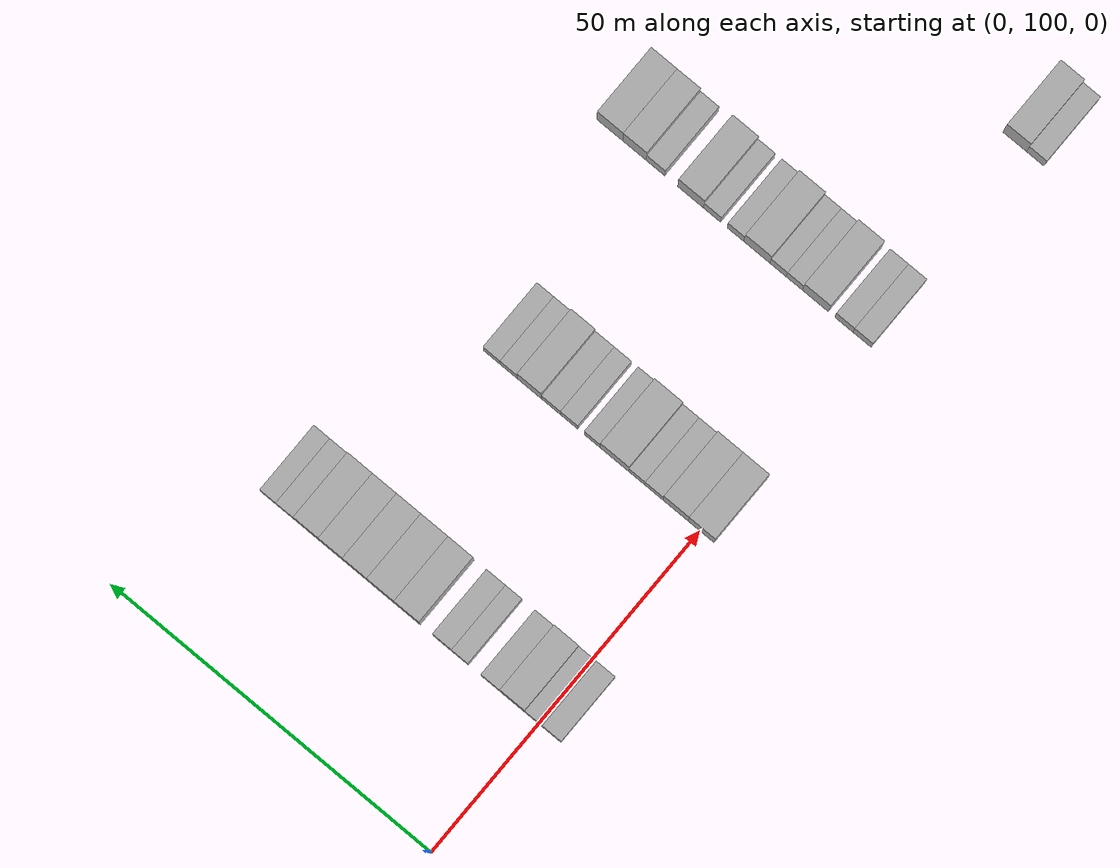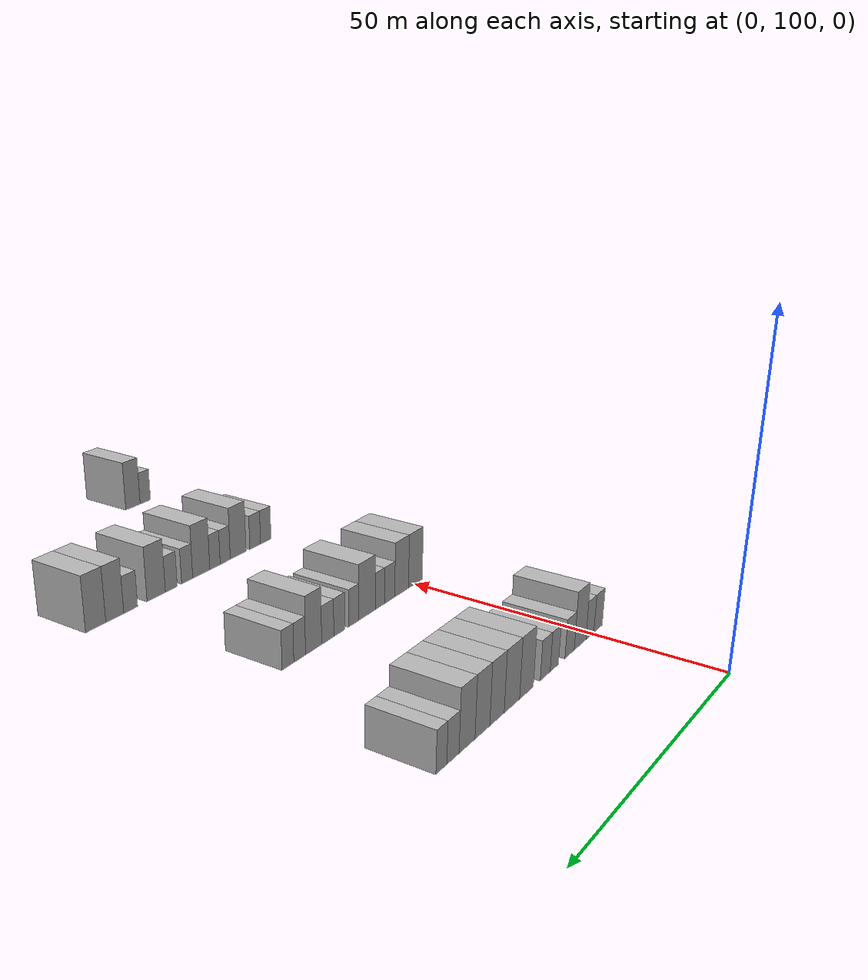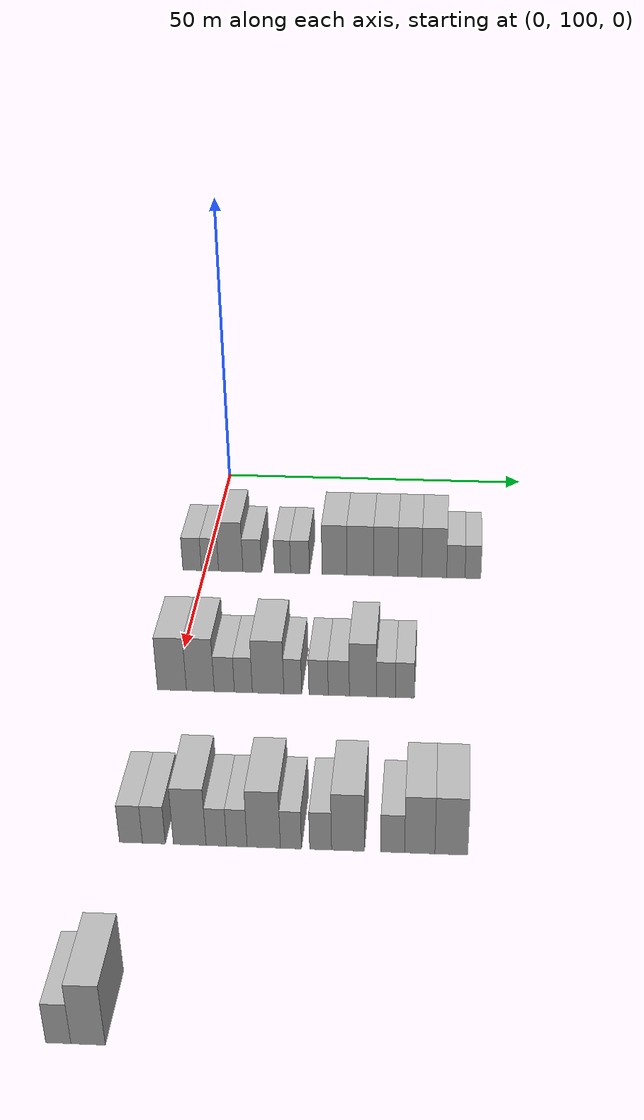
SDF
<sdf version="1.6">
 <world name="default">
  <model name="building_140">
   <static>1</static>
   <pose>25.0000 98.0081 0 0.000000 0.000000 0.000000</pose>
   <link name="link">
    <pose>0 0 3.00 0 0 0</pose>
    <collision name="collision"><geometry><box><size>10.0000 2.9160 6.0000</size></box></geometry></collision>
    <visual name="visual">
     <cast_shadows>0</cast_shadows>
     <geometry><box><size>10.0000 2.9160 6.0000</size></box></geometry>
     <material>
      <script>
       <uri>model://HANNAS_wall/materials/scripts</uri>
       <uri>model://HANNAS_wall/materials/textures</uri>
       <name>vrc/HANNAS_wall</name>
      </script>
     </material>
    </visual>
   </link>
  </model>
  <model name="building_141">
   <static>1</static>
   <pose>25.0000 100.8148 0 0.000000 0.000000 0.000000</pose>
   <link name="link">
    <pose>0 0 3.00 0 0 0</pose>
    <collision name="collision"><geometry><box><size>10.0000 2.6975 6.0000</size></box></geometry></collision>
    <visual name="visual">
     <cast_shadows>0</cast_shadows>
     <geometry><box><size>10.0000 2.6975 6.0000</size></box></geometry>
     <material>
      <script>
       <uri>model://HANNAS_wall/materials/scripts</uri>
       <uri>model://HANNAS_wall/materials/textures</uri>
       <name>vrc/HANNAS_wall</name>
      </script>
     </material>
    </visual>
   </link>
  </model>
  <model name="building_142">
   <static>1</static>
   <pose>25.0000 104.0784 0 0.000000 0.000000 0.000000</pose>
   <link name="link">
    <pose>0 0 4.50 0 0 0</pose>
    <collision name="collision"><geometry><box><size>10.0000 3.8297 9.0000</size></box></geometry></collision>
    <visual name="visual">
     <cast_shadows>0</cast_shadows>
     <geometry><box><size>10.0000 3.8297 9.0000</size></box></geometry>
     <material>
      <script>
       <uri>model://HANNAS_wall/materials/scripts</uri>
       <uri>model://HANNAS_wall/materials/textures</uri>
       <name>vrc/HANNAS_wall</name>
      </script>
     </material>
    </visual>
   </link>
  </model>
  <model name="building_143">
   <static>1</static>
   <pose>25.0000 107.4707 0 0.000000 0.000000 0.000000</pose>
   <link name="link">
    <pose>0 0 3.00 0 0 0</pose>
    <collision name="collision"><geometry><box><size>10.0000 2.9550 6.0000</size></box></geometry></collision>
    <visual name="visual">
     <cast_shadows>0</cast_shadows>
     <geometry><box><size>10.0000 2.9550 6.0000</size></box></geometry>
     <material>
      <script>
       <uri>model://HANNAS_wall/materials/scripts</uri>
       <uri>model://HANNAS_wall/materials/textures</uri>
       <name>vrc/HANNAS_wall</name>
      </script>
     </material>
    </visual>
   </link>
  </model>
  <model name="building_144">
   <static>1</static>
   <pose>25.0000 112.2206 0 0.000000 0.000000 0.000000</pose>
   <link name="link">
    <pose>0 0 3.00 0 0 0</pose>
    <collision name="collision"><geometry><box><size>10.0000 2.5448 6.0000</size></box></geometry></collision>
    <visual name="visual">
     <cast_shadows>0</cast_shadows>
     <geometry><box><size>10.0000 2.5448 6.0000</size></box></geometry>
     <material>
      <script>
       <uri>model://HANNAS_wall/materials/scripts</uri>
       <uri>model://HANNAS_wall/materials/textures</uri>
       <name>vrc/HANNAS_wall</name>
      </script>
     </material>
    </visual>
   </link>
  </model>
  <model name="building_145">
   <static>1</static>
   <pose>25.0000 114.9694 0 0.000000 0.000000 0.000000</pose>
   <link name="link">
    <pose>0 0 3.00 0 0 0</pose>
    <collision name="collision"><geometry><box><size>10.0000 2.9528 6.0000</size></box></geometry></collision>
    <visual name="visual">
     <cast_shadows>0</cast_shadows>
     <geometry><box><size>10.0000 2.9528 6.0000</size></box></geometry>
     <material>
      <script>
       <uri>model://HANNAS_wall/materials/scripts</uri>
       <uri>model://HANNAS_wall/materials/textures</uri>
       <name>vrc/HANNAS_wall</name>
      </script>
     </material>
    </visual>
   </link>
  </model>
  <model name="building_146">
   <static>1</static>
   <pose>25.0000 120.3851 0 0.000000 0.000000 0.000000</pose>
   <link name="link">
    <pose>0 0 4.50 0 0 0</pose>
    <collision name="collision"><geometry><box><size>10.0000 3.8787 9.0000</size></box></geometry></collision>
    <visual name="visual">
     <cast_shadows>0</cast_shadows>
     <geometry><box><size>10.0000 3.8787 9.0000</size></box></geometry>
     <material>
      <script>
       <uri>model://HANNAS_wall/materials/scripts</uri>
       <uri>model://HANNAS_wall/materials/textures</uri>
       <name>vrc/HANNAS_wall</name>
      </script>
     </material>
    </visual>
   </link>
  </model>
  <model name="building_147">
   <static>1</static>
   <pose>25.0000 124.4127 0 0.000000 0.000000 0.000000</pose>
   <link name="link">
    <pose>0 0 4.50 0 0 0</pose>
    <collision name="collision"><geometry><box><size>10.0000 4.1764 9.0000</size></box></geometry></collision>
    <visual name="visual">
     <cast_shadows>0</cast_shadows>
     <geometry><box><size>10.0000 4.1764 9.0000</size></box></geometry>
     <material>
      <script>
       <uri>model://HANNAS_wall/materials/scripts</uri>
       <uri>model://HANNAS_wall/materials/textures</uri>
       <name>vrc/HANNAS_wall</name>
      </script>
     </material>
    </visual>
   </link>
  </model>
  <model name="building_148">
   <static>1</static>
   <pose>25.0000 128.3811 0 0.000000 0.000000 0.000000</pose>
   <link name="link">
    <pose>0 0 4.50 0 0 0</pose>
    <collision name="collision"><geometry><box><size>10.0000 3.7604 9.0000</size></box></geometry></collision>
    <visual name="visual">
     <cast_shadows>0</cast_shadows>
     <geometry><box><size>10.0000 3.7604 9.0000</size></box></geometry>
     <material>
      <script>
       <uri>model://HANNAS_wall/materials/scripts</uri>
       <uri>model://HANNAS_wall/materials/textures</uri>
       <name>vrc/HANNAS_wall</name>
      </script>
     </material>
    </visual>
   </link>
  </model>
  <model name="building_149">
   <static>1</static>
   <pose>25.0000 132.1184 0 0.000000 0.000000 0.000000</pose>
   <link name="link">
    <pose>0 0 4.50 0 0 0</pose>
    <collision name="collision"><geometry><box><size>10.0000 3.7141 9.0000</size></box></geometry></collision>
    <visual name="visual">
     <cast_shadows>0</cast_shadows>
     <geometry><box><size>10.0000 3.7141 9.0000</size></box></geometry>
     <material>
      <script>
       <uri>model://HANNAS_wall/materials/scripts</uri>
       <uri>model://HANNAS_wall/materials/textures</uri>
       <name>vrc/HANNAS_wall</name>
      </script>
     </material>
    </visual>
   </link>
  </model>
  <model name="building_150">
   <static>1</static>
   <pose>25.0000 135.9030 0 0.000000 0.000000 0.000000</pose>
   <link name="link">
    <pose>0 0 4.50 0 0 0</pose>
    <collision name="collision"><geometry><box><size>10.0000 3.8553 9.0000</size></box></geometry></collision>
    <visual name="visual">
     <cast_shadows>0</cast_shadows>
     <geometry><box><size>10.0000 3.8553 9.0000</size></box></geometry>
     <material>
      <script>
       <uri>model://HANNAS_wall/materials/scripts</uri>
       <uri>model://HANNAS_wall/materials/textures</uri>
       <name>vrc/HANNAS_wall</name>
      </script>
     </material>
    </visual>
   </link>
  </model>
  <model name="building_151">
   <static>1</static>
   <pose>25.0000 139.2548 0 0.000000 0.000000 0.000000</pose>
   <link name="link">
    <pose>0 0 3.00 0 0 0</pose>
    <collision name="collision"><geometry><box><size>10.0000 2.8482 6.0000</size></box></geometry></collision>
    <visual name="visual">
     <cast_shadows>0</cast_shadows>
     <geometry><box><size>10.0000 2.8482 6.0000</size></box></geometry>
     <material>
      <script>
       <uri>model://HANNAS_wall/materials/scripts</uri>
       <uri>model://HANNAS_wall/materials/textures</uri>
       <name>vrc/HANNAS_wall</name>
      </script>
     </material>
    </visual>
   </link>
  </model>
  <model name="building_152">
   <static>1</static>
   <pose>25.0000 141.9115 0 0.000000 0.000000 0.000000</pose>
   <link name="link">
    <pose>0 0 3.00 0 0 0</pose>
    <collision name="collision"><geometry><box><size>10.0000 2.4652 6.0000</size></box></geometry></collision>
    <visual name="visual">
     <cast_shadows>0</cast_shadows>
     <geometry><box><size>10.0000 2.4652 6.0000</size></box></geometry>
     <material>
      <script>
       <uri>model://HANNAS_wall/materials/scripts</uri>
       <uri>model://HANNAS_wall/materials/textures</uri>
       <name>vrc/HANNAS_wall</name>
      </script>
     </material>
    </visual>
   </link>
  </model>
  <model name="building_373">
   <static>1</static>
   <pose>55.0000 99.8440 0 0.000000 0.000000 0.000000</pose>
   <link name="link">
    <pose>0 0 4.50 0 0 0</pose>
    <collision name="collision"><geometry><box><size>10.0000 4.0510 9.0000</size></box></geometry></collision>
    <visual name="visual">
     <cast_shadows>0</cast_shadows>
     <geometry><box><size>10.0000 4.0510 9.0000</size></box></geometry>
     <material>
      <script>
       <uri>model://HANNAS_wall/materials/scripts</uri>
       <uri>model://HANNAS_wall/materials/textures</uri>
       <name>vrc/HANNAS_wall</name>
      </script>
     </material>
    </visual>
   </link>
  </model>
  <model name="building_374">
   <static>1</static>
   <pose>55.0000 103.8215 0 0.000000 0.000000 0.000000</pose>
   <link name="link">
    <pose>0 0 4.50 0 0 0</pose>
    <collision name="collision"><geometry><box><size>10.0000 3.9040 9.0000</size></box></geometry></collision>
    <visual name="visual">
     <cast_shadows>0</cast_shadows>
     <geometry><box><size>10.0000 3.9040 9.0000</size></box></geometry>
     <material>
      <script>
       <uri>model://HANNAS_wall/materials/scripts</uri>
       <uri>model://HANNAS_wall/materials/textures</uri>
       <name>vrc/HANNAS_wall</name>
      </script>
     </material>
    </visual>
   </link>
  </model>
  <model name="building_375">
   <static>1</static>
   <pose>55.0000 107.1887 0 0.000000 0.000000 0.000000</pose>
   <link name="link">
    <pose>0 0 3.00 0 0 0</pose>
    <collision name="collision"><geometry><box><size>10.0000 2.8305 6.0000</size></box></geometry></collision>
    <visual name="visual">
     <cast_shadows>0</cast_shadows>
     <geometry><box><size>10.0000 2.8305 6.0000</size></box></geometry>
     <material>
      <script>
       <uri>model://HANNAS_wall/materials/scripts</uri>
       <uri>model://HANNAS_wall/materials/textures</uri>
       <name>vrc/HANNAS_wall</name>
      </script>
     </material>
    </visual>
   </link>
  </model>
  <model name="building_376">
   <static>1</static>
   <pose>55.0000 109.8591 0 0.000000 0.000000 0.000000</pose>
   <link name="link">
    <pose>0 0 3.00 0 0 0</pose>
    <collision name="collision"><geometry><box><size>10.0000 2.5101 6.0000</size></box></geometry></collision>
    <visual name="visual">
     <cast_shadows>0</cast_shadows>
     <geometry><box><size>10.0000 2.5101 6.0000</size></box></geometry>
     <material>
      <script>
       <uri>model://HANNAS_wall/materials/scripts</uri>
       <uri>model://HANNAS_wall/materials/textures</uri>
       <name>vrc/HANNAS_wall</name>
      </script>
     </material>
    </visual>
   </link>
  </model>
  <model name="building_377">
   <static>1</static>
   <pose>55.0000 113.3225 0 0.000000 0.000000 0.000000</pose>
   <link name="link">
    <pose>0 0 4.50 0 0 0</pose>
    <collision name="collision"><geometry><box><size>10.0000 4.4168 9.0000</size></box></geometry></collision>
    <visual name="visual">
     <cast_shadows>0</cast_shadows>
     <geometry><box><size>10.0000 4.4168 9.0000</size></box></geometry>
     <material>
      <script>
       <uri>model://HANNAS_wall/materials/scripts</uri>
       <uri>model://HANNAS_wall/materials/textures</uri>
       <name>vrc/HANNAS_wall</name>
      </script>
     </material>
    </visual>
   </link>
  </model>
  <model name="building_378">
   <static>1</static>
   <pose>55.0000 116.7806 0 0.000000 0.000000 0.000000</pose>
   <link name="link">
    <pose>0 0 3.00 0 0 0</pose>
    <collision name="collision"><geometry><box><size>10.0000 2.4994 6.0000</size></box></geometry></collision>
    <visual name="visual">
     <cast_shadows>0</cast_shadows>
     <geometry><box><size>10.0000 2.4994 6.0000</size></box></geometry>
     <material>
      <script>
       <uri>model://HANNAS_wall/materials/scripts</uri>
       <uri>model://HANNAS_wall/materials/textures</uri>
       <name>vrc/HANNAS_wall</name>
      </script>
     </material>
    </visual>
   </link>
  </model>
  <model name="building_379">
   <static>1</static>
   <pose>55.0000 120.3740 0 0.000000 0.000000 0.000000</pose>
   <link name="link">
    <pose>0 0 3.00 0 0 0</pose>
    <collision name="collision"><geometry><box><size>10.0000 2.6873 6.0000</size></box></geometry></collision>
    <visual name="visual">
     <cast_shadows>0</cast_shadows>
     <geometry><box><size>10.0000 2.6873 6.0000</size></box></geometry>
     <material>
      <script>
       <uri>model://HANNAS_wall/materials/scripts</uri>
       <uri>model://HANNAS_wall/materials/textures</uri>
       <name>vrc/HANNAS_wall</name>
      </script>
     </material>
    </visual>
   </link>
  </model>
  <model name="building_380">
   <static>1</static>
   <pose>55.0000 123.1897 0 0.000000 0.000000 0.000000</pose>
   <link name="link">
    <pose>0 0 3.00 0 0 0</pose>
    <collision name="collision"><geometry><box><size>10.0000 2.9441 6.0000</size></box></geometry></collision>
    <visual name="visual">
     <cast_shadows>0</cast_shadows>
     <geometry><box><size>10.0000 2.9441 6.0000</size></box></geometry>
     <material>
      <script>
       <uri>model://HANNAS_wall/materials/scripts</uri>
       <uri>model://HANNAS_wall/materials/textures</uri>
       <name>vrc/HANNAS_wall</name>
      </script>
     </material>
    </visual>
   </link>
  </model>
  <model name="building_381">
   <static>1</static>
   <pose>55.0000 126.5423 0 0.000000 0.000000 0.000000</pose>
   <link name="link">
    <pose>0 0 4.50 0 0 0</pose>
    <collision name="collision"><geometry><box><size>10.0000 3.7610 9.0000</size></box></geometry></collision>
    <visual name="visual">
     <cast_shadows>0</cast_shadows>
     <geometry><box><size>10.0000 3.7610 9.0000</size></box></geometry>
     <material>
      <script>
       <uri>model://HANNAS_wall/materials/scripts</uri>
       <uri>model://HANNAS_wall/materials/textures</uri>
       <name>vrc/HANNAS_wall</name>
      </script>
     </material>
    </visual>
   </link>
  </model>
  <model name="building_382">
   <static>1</static>
   <pose>55.0000 129.7508 0 0.000000 0.000000 0.000000</pose>
   <link name="link">
    <pose>0 0 3.00 0 0 0</pose>
    <collision name="collision"><geometry><box><size>10.0000 2.6559 6.0000</size></box></geometry></collision>
    <visual name="visual">
     <cast_shadows>0</cast_shadows>
     <geometry><box><size>10.0000 2.6559 6.0000</size></box></geometry>
     <material>
      <script>
       <uri>model://HANNAS_wall/materials/scripts</uri>
       <uri>model://HANNAS_wall/materials/textures</uri>
       <name>vrc/HANNAS_wall</name>
      </script>
     </material>
    </visual>
   </link>
  </model>
  <model name="building_383">
   <static>1</static>
   <pose>55.0000 132.3890 0 0.000000 0.000000 0.000000</pose>
   <link name="link">
    <pose>0 0 3.00 0 0 0</pose>
    <collision name="collision"><geometry><box><size>10.0000 2.6204 6.0000</size></box></geometry></collision>
    <visual name="visual">
     <cast_shadows>0</cast_shadows>
     <geometry><box><size>10.0000 2.6204 6.0000</size></box></geometry>
     <material>
      <script>
       <uri>model://HANNAS_wall/materials/scripts</uri>
       <uri>model://HANNAS_wall/materials/textures</uri>
       <name>vrc/HANNAS_wall</name>
      </script>
     </material>
    </visual>
   </link>
  </model>
  <model name="building_584">
   <static>1</static>
   <pose>85.0000 99.7848 0 0.000000 0.000000 0.000000</pose>
   <link name="link">
    <pose>0 0 3.00 0 0 0</pose>
    <collision name="collision"><geometry><box><size>10.0000 2.8363 6.0000</size></box></geometry></collision>
    <visual name="visual">
     <cast_shadows>0</cast_shadows>
     <geometry><box><size>10.0000 2.8363 6.0000</size></box></geometry>
     <material>
      <script>
       <uri>model://HANNAS_wall/materials/scripts</uri>
       <uri>model://HANNAS_wall/materials/textures</uri>
       <name>vrc/HANNAS_wall</name>
      </script>
     </material>
    </visual>
   </link>
  </model>
  <model name="building_585">
   <static>1</static>
   <pose>85.0000 102.6178 0 0.000000 0.000000 0.000000</pose>
   <link name="link">
    <pose>0 0 3.00 0 0 0</pose>
    <collision name="collision"><geometry><box><size>10.0000 2.8299 6.0000</size></box></geometry></collision>
    <visual name="visual">
     <cast_shadows>0</cast_shadows>
     <geometry><box><size>10.0000 2.8299 6.0000</size></box></geometry>
     <material>
      <script>
       <uri>model://HANNAS_wall/materials/scripts</uri>
       <uri>model://HANNAS_wall/materials/textures</uri>
       <name>vrc/HANNAS_wall</name>
      </script>
     </material>
    </visual>
   </link>
  </model>
  <model name="building_586">
   <static>1</static>
   <pose>85.0000 107.0486 0 0.000000 0.000000 0.000000</pose>
   <link name="link">
    <pose>0 0 4.50 0 0 0</pose>
    <collision name="collision"><geometry><box><size>10.0000 4.0317 9.0000</size></box></geometry></collision>
    <visual name="visual">
     <cast_shadows>0</cast_shadows>
     <geometry><box><size>10.0000 4.0317 9.0000</size></box></geometry>
     <material>
      <script>
       <uri>model://HANNAS_wall/materials/scripts</uri>
       <uri>model://HANNAS_wall/materials/textures</uri>
       <name>vrc/HANNAS_wall</name>
      </script>
     </material>
    </visual>
   </link>
  </model>
  <model name="building_587">
   <static>1</static>
   <pose>85.0000 110.3262 0 0.000000 0.000000 0.000000</pose>
   <link name="link">
    <pose>0 0 3.00 0 0 0</pose>
    <collision name="collision"><geometry><box><size>10.0000 2.5233 6.0000</size></box></geometry></collision>
    <visual name="visual">
     <cast_shadows>0</cast_shadows>
     <geometry><box><size>10.0000 2.5233 6.0000</size></box></geometry>
     <material>
      <script>
       <uri>model://HANNAS_wall/materials/scripts</uri>
       <uri>model://HANNAS_wall/materials/textures</uri>
       <name>vrc/HANNAS_wall</name>
      </script>
     </material>
    </visual>
   </link>
  </model>
  <model name="building_588">
   <static>1</static>
   <pose>85.0000 112.8504 0 0.000000 0.000000 0.000000</pose>
   <link name="link">
    <pose>0 0 3.00 0 0 0</pose>
    <collision name="collision"><geometry><box><size>10.0000 2.5251 6.0000</size></box></geometry></collision>
    <visual name="visual">
     <cast_shadows>0</cast_shadows>
     <geometry><box><size>10.0000 2.5251 6.0000</size></box></geometry>
     <material>
      <script>
       <uri>model://HANNAS_wall/materials/scripts</uri>
       <uri>model://HANNAS_wall/materials/textures</uri>
       <name>vrc/HANNAS_wall</name>
      </script>
     </material>
    </visual>
   </link>
  </model>
  <model name="building_589">
   <static>1</static>
   <pose>85.0000 116.1559 0 0.000000 0.000000 0.000000</pose>
   <link name="link">
    <pose>0 0 4.50 0 0 0</pose>
    <collision name="collision"><geometry><box><size>10.0000 4.0858 9.0000</size></box></geometry></collision>
    <visual name="visual">
     <cast_shadows>0</cast_shadows>
     <geometry><box><size>10.0000 4.0858 9.0000</size></box></geometry>
     <material>
      <script>
       <uri>model://HANNAS_wall/materials/scripts</uri>
       <uri>model://HANNAS_wall/materials/textures</uri>
       <name>vrc/HANNAS_wall</name>
      </script>
     </material>
    </visual>
   </link>
  </model>
  <model name="building_590">
   <static>1</static>
   <pose>85.0000 119.4943 0 0.000000 0.000000 0.000000</pose>
   <link name="link">
    <pose>0 0 3.00 0 0 0</pose>
    <collision name="collision"><geometry><box><size>10.0000 2.5911 6.0000</size></box></geometry></collision>
    <visual name="visual">
     <cast_shadows>0</cast_shadows>
     <geometry><box><size>10.0000 2.5911 6.0000</size></box></geometry>
     <material>
      <script>
       <uri>model://HANNAS_wall/materials/scripts</uri>
       <uri>model://HANNAS_wall/materials/textures</uri>
       <name>vrc/HANNAS_wall</name>
      </script>
     </material>
    </visual>
   </link>
  </model>
  <model name="building_591">
   <static>1</static>
   <pose>85.0000 123.1284 0 0.000000 0.000000 0.000000</pose>
   <link name="link">
    <pose>0 0 3.00 0 0 0</pose>
    <collision name="collision"><geometry><box><size>10.0000 2.6769 6.0000</size></box></geometry></collision>
    <visual name="visual">
     <cast_shadows>0</cast_shadows>
     <geometry><box><size>10.0000 2.6769 6.0000</size></box></geometry>
     <material>
      <script>
       <uri>model://HANNAS_wall/materials/scripts</uri>
       <uri>model://HANNAS_wall/materials/textures</uri>
       <name>vrc/HANNAS_wall</name>
      </script>
     </material>
    </visual>
   </link>
  </model>
  <model name="building_592">
   <static>1</static>
   <pose>85.0000 126.4808 0 0.000000 0.000000 0.000000</pose>
   <link name="link">
    <pose>0 0 4.50 0 0 0</pose>
    <collision name="collision"><geometry><box><size>10.0000 4.0280 9.0000</size></box></geometry></collision>
    <visual name="visual">
     <cast_shadows>0</cast_shadows>
     <geometry><box><size>10.0000 4.0280 9.0000</size></box></geometry>
     <material>
      <script>
       <uri>model://HANNAS_wall/materials/scripts</uri>
       <uri>model://HANNAS_wall/materials/textures</uri>
       <name>vrc/HANNAS_wall</name>
      </script>
     </material>
    </visual>
   </link>
  </model>
  <model name="building_593">
   <static>1</static>
   <pose>85.0000 131.9452 0 0.000000 0.000000 0.000000</pose>
   <link name="link">
    <pose>0 0 3.00 0 0 0</pose>
    <collision name="collision"><geometry><box><size>10.0000 2.9008 6.0000</size></box></geometry></collision>
    <visual name="visual">
     <cast_shadows>0</cast_shadows>
     <geometry><box><size>10.0000 2.9008 6.0000</size></box></geometry>
     <material>
      <script>
       <uri>model://HANNAS_wall/materials/scripts</uri>
       <uri>model://HANNAS_wall/materials/textures</uri>
       <name>vrc/HANNAS_wall</name>
      </script>
     </material>
    </visual>
   </link>
  </model>
  <model name="building_594">
   <static>1</static>
   <pose>85.0000 135.2289 0 0.000000 0.000000 0.000000</pose>
   <link name="link">
    <pose>0 0 4.50 0 0 0</pose>
    <collision name="collision"><geometry><box><size>10.0000 3.6666 9.0000</size></box></geometry></collision>
    <visual name="visual">
     <cast_shadows>0</cast_shadows>
     <geometry><box><size>10.0000 3.6666 9.0000</size></box></geometry>
     <material>
      <script>
       <uri>model://HANNAS_wall/materials/scripts</uri>
       <uri>model://HANNAS_wall/materials/textures</uri>
       <name>vrc/HANNAS_wall</name>
      </script>
     </material>
    </visual>
   </link>
  </model>
  <model name="building_595">
   <static>1</static>
   <pose>85.0000 139.0614 0 0.000000 0.000000 0.000000</pose>
   <link name="link">
    <pose>0 0 4.50 0 0 0</pose>
    <collision name="collision"><geometry><box><size>10.0000 3.9982 9.0000</size></box></geometry></collision>
    <visual name="visual">
     <cast_shadows>0</cast_shadows>
     <geometry><box><size>10.0000 3.9982 9.0000</size></box></geometry>
     <material>
      <script>
       <uri>model://HANNAS_wall/materials/scripts</uri>
       <uri>model://HANNAS_wall/materials/textures</uri>
       <name>vrc/HANNAS_wall</name>
      </script>
     </material>
    </visual>
   </link>
  </model>
  <model name="building_809">
   <static>1</static>
   <pose>115.0000 97.7478 0 0.000000 0.000000 0.000000</pose>
   <link name="link">
    <pose>0 0 3.00 0 0 0</pose>
    <collision name="collision"><geometry><box><size>10.0000 2.6942 6.0000</size></box></geometry></collision>
    <visual name="visual">
     <cast_shadows>0</cast_shadows>
     <geometry><box><size>10.0000 2.6942 6.0000</size></box></geometry>
     <material>
      <script>
       <uri>model://HANNAS_wall/materials/scripts</uri>
       <uri>model://HANNAS_wall/materials/textures</uri>
       <name>vrc/HANNAS_wall</name>
      </script>
     </material>
    </visual>
   </link>
  </model>
  <model name="building_810">
   <static>1</static>
   <pose>115.0000 100.9353 0 0.000000 0.000000 0.000000</pose>
   <link name="link">
    <pose>0 0 4.50 0 0 0</pose>
    <collision name="collision"><geometry><box><size>10.0000 3.6808 9.0000</size></box></geometry></collision>
    <visual name="visual">
     <cast_shadows>0</cast_shadows>
     <geometry><box><size>10.0000 3.6808 9.0000</size></box></geometry>
     <material>
      <script>
       <uri>model://HANNAS_wall/materials/scripts</uri>
       <uri>model://HANNAS_wall/materials/textures</uri>
       <name>vrc/HANNAS_wall</name>
      </script>
     </material>
    </visual>
   </link>
  </model>
 </world>
</sdf>
